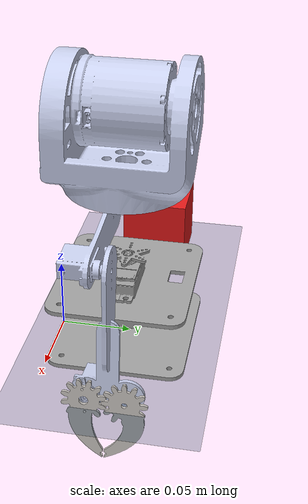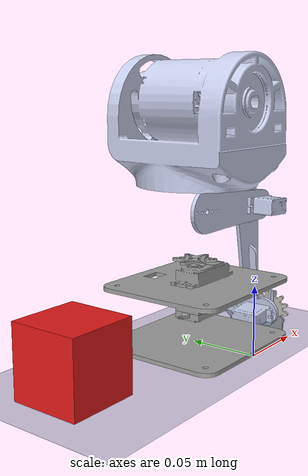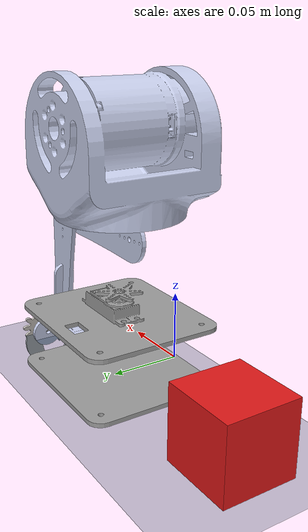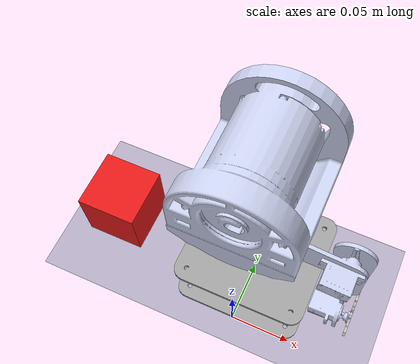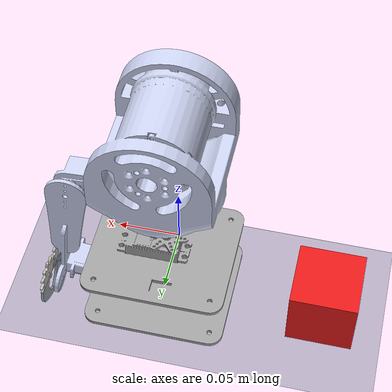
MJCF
<mujoco model="manipulator_with_box">
  <compiler angle="radian" meshdir="../meshes" autolimits="true"/>

  <option timestep="0.001" gravity="0 0 -9.81">
    <flag warmstart="enable"/>
  </option>

  <visual>
    <headlight diffuse="0.6 0.6 0.6" ambient="0.3 0.3 0.3" specular="0 0 0"/>
    <rgba haze="0.15 0.25 0.35 1"/>
    <global azimuth="120" elevation="-20"/>
    <quality shadowsize="4096"/>
    <map stiffness="700" shadowscale="0.5" fogstart="10" fogend="15" zfar="40"/>
  </visual>

  <asset>
    <texture name="grid" type="2d" builtin="checker" width="512" height="512"
             rgb1="0.1 0.2 0.3" rgb2="0.2 0.3 0.4"/>
    <material name="grid" texture="grid" texrepeat="8 8" texuniform="true" reflectance="0.2"/>

    <texture name="skybox" type="skybox" builtin="gradient" rgb1="0.3 0.5 0.7" rgb2="0.0 0.0 0.0"
             width="512" height="3072"/>

    <mesh name="base_link" file="base_link.STL" scale="1 1 1"/>
    <mesh name="link_1" file="link_1.STL" scale="1 1 1"/>
    <mesh name="link_2" file="link_2.STL" scale="1 1 1"/>
    <mesh name="link_3" file="link_3.STL" scale="1 1 1"/>
    <mesh name="claw_right" file="claw_right.STL" scale="1 1 1"/>
    <mesh name="claw_left" file="claw_left.STL" scale="1 1 1"/>

    <material name="gray" rgba="0.627 0.627 0.627 1"/>
    <material name="blue" rgba="0.792 0.820 0.933 1"/>
    <material name="silver" rgba="0.776 0.757 0.737 1"/>
    <material name="target_red" rgba="0.9 0.1 0.1 1"/>
  </asset>

  <worldbody>
    <light name="spotlight" mode="targetbodycom" target="base_link"
           directional="false" diffuse="0.8 0.8 0.8" specular="0.3 0.3 0.3"
           pos="0 0 4.0" dir="0 0 -1" castshadow="true"/>
    <light name="ambient" directional="true" diffuse="0.4 0.4 0.4" specular="0.1 0.1 0.1"
           pos="0 0 3.0" dir="0 0 -1"/>

    <geom name="floor" type="plane" size="2 2 0.1" material="grid" condim="3"/>

    <body name="target_box" pos="-0.125 0.05 0.025">
      <freejoint/>
      <inertial pos="0 0 0" mass="0.05" diaginertia="0.0001 0.0001 0.0001"/>
      <geom name="box_geom" type="box" size="0.025 0.025 0.025"
            material="target_red" condim="3" friction="1 0.005 0.0001"/>
      <site name="box_center" pos="0 0 0" size="0.005" rgba="1 1 0 1"/>
    </body>

    <body name="base_link" pos="0 0 0.0">
      <inertial pos="0.0021253 0.047935 0.027764"
                mass="0.0896"
                diaginertia="0.00010836 6.5382E-05 5.041E-05"/>
      <geom type="mesh" mesh="base_link" material="gray" contype="0" conaffinity="0"/>
      <geom type="mesh" mesh="base_link" material="gray" group="1"/>

      <body name="link_1" pos="-0.0030196 0.046937 0.0635">
        <inertial pos="-0.00017376 -0.015933 0.017371"
                  mass="0.024846"
                  diaginertia="7.0045E-06 7.2894E-06 3.4858E-06"/>
        <joint name="joint_1" type="hinge" axis="0 0 1"
               range="0 3.14" damping="0.1" armature="0.01"/>
        <geom type="mesh" mesh="link_1" material="blue" contype="0" conaffinity="0"/>
        <geom type="mesh" mesh="link_1" material="blue" group="1"/>

        <body name="link_2" pos="0.00031511 -0.0095653 0.034407">
          <inertial pos="0.05189 -0.0024721 -0.0024701"
                    mass="0.01633"
                    diaginertia="5.3932E-06 5.9038E-06 6.549E-07"/>
          <joint name="joint_2" type="hinge" axis="0 -1 0"
                 range="0 3.14" damping="0.1" armature="0.01"/>
          <geom type="mesh" mesh="link_2" material="blue" contype="0" conaffinity="0"/>
          <geom type="mesh" mesh="link_2" material="blue" group="1"/>

          <body name="link_3" pos="0.071531 0.011279 -0.0041348">
            <inertial pos="0.0037357 -0.001707 -0.066045"
                      mass="0.019923"
                      diaginertia="1.4011E-06 5.2184E-06 5.6378E-06"/>
            <joint name="joint_3" type="hinge" axis="0 -1 0"
                   range="0 3.14" damping="0.1" armature="0.01"/>
            <geom type="mesh" mesh="link_3" material="blue" contype="0" conaffinity="0"/>
            <geom type="mesh" mesh="link_3" material="blue" group="1"/>

            <body name="claw_right" pos="0.020925 -0.013767 -0.090331">
              <inertial pos="0.0018122 0.0028283 -0.0079472"
                        mass="0.013225"
                        diaginertia="5.8458E-07 2.7116E-06 3.2338E-06"/>
              <joint name="joint_4" type="hinge" axis="-1 0 0"
                     range="0 0.8" damping="0.05" armature="0.005"/>
              <geom type="mesh" mesh="claw_right" material="silver" contype="0" conaffinity="0"/>
              <geom type="mesh" mesh="claw_right" material="silver" group="1"/>
            </body>

            <body name="claw_left" pos="0.0091023 0.0182709 -0.090512">
              <inertial pos="0.013771 0.012345 -0.01495"
                        mass="0.013641"
                        diaginertia="6.6306E-07 2.8184E-06 3.4175E-06"/>
              <joint name="joint_5" type="hinge" axis="1 0 0"
                     range="0 0.8" damping="0.05" armature="0.005"/>
              <geom type="mesh" mesh="claw_left" pos="0 -0.014 0.0075" material="silver" contype="0" conaffinity="0"/>
              <geom type="mesh" mesh="claw_left" pos="0 -0.014 0.0075" material="silver" group="1"/>
            </body>
          </body>
        </body>
      </body>
    </body>
  </worldbody>

  <actuator>
    <position name="joint_1_actuator" joint="joint_1" kp="170" ctrlrange="0 3.14"/>
    <position name="joint_2_actuator" joint="joint_2" kp="40" kv="1" ctrlrange="0 3.14"/>
    <position name="joint_3_actuator" joint="joint_3" kp="30" kv="1" ctrlrange="0 3.14"/>
    <position name="joint_4_actuator" joint="joint_4" kp="10" kv="1" ctrlrange="0 0.8"/>
    <position name="joint_5_actuator" joint="joint_5" kp="10" kv="1" ctrlrange="0 0.8"/>
  </actuator>

  <sensor>
    <jointpos name="joint_1_pos" joint="joint_1"/>
    <jointpos name="joint_2_pos" joint="joint_2"/>
    <jointpos name="joint_3_pos" joint="joint_3"/>
    <jointpos name="joint_4_pos" joint="joint_4"/>
    <jointpos name="joint_5_pos" joint="joint_5"/>

    <jointvel name="joint_1_vel" joint="joint_1"/>
    <jointvel name="joint_2_vel" joint="joint_2"/>
    <jointvel name="joint_3_vel" joint="joint_3"/>
    <jointvel name="joint_4_vel" joint="joint_4"/>
    <jointvel name="joint_5_vel" joint="joint_5"/>

    <framepos name="box_position" objtype="site" objname="box_center"/>
  </sensor>
</mujoco>
